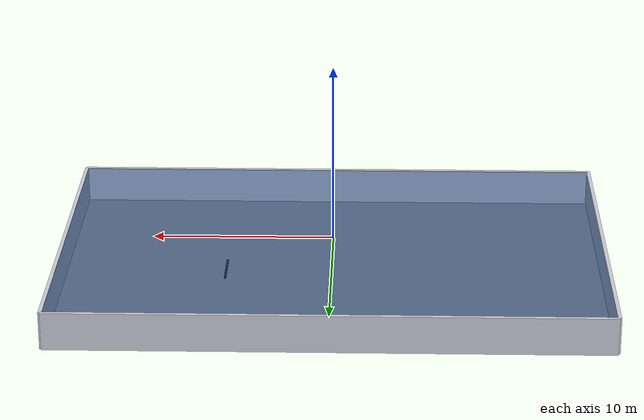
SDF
<?xml version="1.0"?>
<!-- Auto-generated by scripts/generate_worlds.py — do not edit by hand. -->
<sdf version="1.9">
  <world name="marv_task_find_gate_simple">
    <scene>
      <ambient>0.01 0.01 0.01 1.0</ambient>
      <background>0.05 0.08 0.15 1.0</background>
      <shadows>true</shadows>
    </scene>
    <physics name="1ms" type="ignored">
      <max_step_size>0.001</max_step_size>
      <real_time_factor>1.0</real_time_factor>
    </physics>
    <plugin filename="gz-sim-physics-system" name="gz::sim::systems::Physics"/>
    <plugin filename="gz-sim-user-commands-system" name="gz::sim::systems::UserCommands"/>
    <plugin filename="gz-sim-scene-broadcaster-system" name="gz::sim::systems::SceneBroadcaster"/>
    <plugin filename="gz-sim-sensors-system" name="gz::sim::systems::Sensors">
      <render_engine>ogre2</render_engine>
    </plugin>
    <!-- Required for ArduPilotPlugin JSON (imu_sensor -> imuMsgValid). -->
    <plugin filename="gz-sim-imu-system" name="gz::sim::systems::Imu"/>
    <spherical_coordinates>
      <surface_model>EARTH_WGS84</surface_model>
      <world_frame_orientation>ENU</world_frame_orientation>
      <latitude_deg>1.309562</latitude_deg>
      <longitude_deg>103.7745783</longitude_deg>
      <elevation>0.0</elevation>
      <heading_deg>0.0</heading_deg>
    </spherical_coordinates>
    <light type="directional" name="sun1">
      <pose>50 0 150 0 0 0</pose>
      <diffuse>1 1 1 1</diffuse>
      <specular>0.1 0.1 0.1 1</specular>
      <direction>0.3 0.3 -1</direction>
      <cast_shadows>false</cast_shadows>
    </light>
    <light type="directional" name="sun_diffuse">
      <pose>-50 0 -150 0 0 0</pose>
      <diffuse>0.6 0.6 0.6 1</diffuse>
      <direction>-0.3 -0.3 -1</direction>
      <cast_shadows>false</cast_shadows>
    </light>
    <!-- find_gate fallback. -->
    <include>
      <name>pool</name>
      <uri>model://marv_pool</uri>
      <pose>0 0 0 0 0 0</pose>
    </include>
    <include>
      <name>gate</name>
      <uri>model://marv_gate</uri>
      <pose>6 0 -1 0 0 0</pose>
    </include>

    <plugin filename="gz-sim-buoyancy-system" name="gz::sim::systems::Buoyancy">
      <graded_buoyancy>
        <default_density>1000</default_density>
        <density_change>
          <above_depth>0</above_depth>
          <density>1</density>
        </density_change>
      </graded_buoyancy>
    </plugin>
  </world>
</sdf>

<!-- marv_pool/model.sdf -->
<sdf version="1.9">
  <model name="marv_pool">
    <static>true</static>
    <link name="link">
      <visual name="floor">
        <pose>0 0 -2.05 0 0 0</pose>
        <geometry>
          <box>
            <size>30 20 0.1</size>
          </box>
        </geometry>
        <material>
          <ambient>0.35 0.35 0.38 1</ambient>
          <diffuse>0.45 0.45 0.48 1</diffuse>
        </material>
      </visual>
      <collision name="floor_collision">
        <pose>0 0 -2.05 0 0 0</pose>
        <geometry>
          <box>
            <size>30 20 0.1</size>
          </box>
        </geometry>
      </collision>

      <visual name="water_surface">
        <pose>0 0 0 0 0 0</pose>
        <geometry>
          <box>
            <size>30 20 0.02</size>
          </box>
        </geometry>
        <material>
          <ambient>0.05 0.25 0.55 0.35</ambient>
          <diffuse>0.1 0.35 0.65 0.35</diffuse>
        </material>
      </visual>

      <!-- Pool walls -->
      <visual name="wall_n">
        <pose>0 10  -1 0 0 0</pose>
        <geometry><box><size>30 0.2 2.1</size></box></geometry>
        <material><ambient>0.7 0.7 0.75 1</ambient><diffuse>0.8 0.8 0.85 1</diffuse></material>
      </visual>
      <collision name="wall_n"><pose>0 10 -1 0 0 0</pose><geometry><box><size>30 0.2 2.1</size></box></geometry></collision>
      <visual name="wall_s">
        <pose>0 -10 -1 0 0 0</pose>
        <geometry><box><size>30 0.2 2.1</size></box></geometry>
        <material><ambient>0.7 0.7 0.75 1</ambient><diffuse>0.8 0.8 0.85 1</diffuse></material>
      </visual>
      <collision name="wall_s"><pose>0 -10 -1 0 0 0</pose><geometry><box><size>30 0.2 2.1</size></box></geometry></collision>
      <visual name="wall_e">
        <pose>15 0 -1 0 0 0</pose>
        <geometry><box><size>0.2 20 2.1</size></box></geometry>
        <material><ambient>0.7 0.7 0.75 1</ambient><diffuse>0.8 0.8 0.85 1</diffuse></material>
      </visual>
      <collision name="wall_e"><pose>15 0 -1 0 0 0</pose><geometry><box><size>0.2 20 2.1</size></box></geometry></collision>
      <visual name="wall_w">
        <pose>-15 0 -1 0 0 0</pose>
        <geometry><box><size>0.2 20 2.1</size></box></geometry>
        <material><ambient>0.7 0.7 0.75 1</ambient><diffuse>0.8 0.8 0.85 1</diffuse></material>
      </visual>
      <collision name="wall_w"><pose>-15 0 -1 0 0 0</pose><geometry><box><size>0.2 20 2.1</size></box></geometry></collision>
    </link>
  </model>
</sdf>

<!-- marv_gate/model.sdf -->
<!-- Gate opening 2 m wide; frame at 1 m depth (center z=-1 in ENU, surface z=0). -->
<sdf version="1.9">
  <model name="marv_gate">
    <static>true</static>
    <link name="link">
      <pose>0 0 -1 0 0 0</pose>
      <!-- Left post -->
      <visual name="post_l">
        <pose>0 -1.15 -0.5 0 0 0</pose>
        <geometry><box><size>0.12 0.12 1.0</size></box></geometry>
        <material><ambient>0.02 0.02 0.02 1</ambient><diffuse>0.05 0.05 0.05 1</diffuse></material>
      </visual>
      <collision name="post_l"><pose>0 -1.15 -0.5 0 0 0</pose><geometry><box><size>0.12 0.12 1.0</size></box></geometry></collision>
      <!-- Right post -->
      <visual name="post_r">
        <pose>0 1.15 -0.5 0 0 0</pose>
        <geometry><box><size>0.12 0.12 1.0</size></box></geometry>
        <material><ambient>0.02 0.02 0.02 1</ambient><diffuse>0.05 0.05 0.05 1</diffuse></material>
      </visual>
      <collision name="post_r"><pose>0 1.15 -0.5 0 0 0</pose><geometry><box><size>0.12 0.12 1.0</size></box></geometry></collision>
      <!-- Top bar -->
      <visual name="top_bar">
        <pose>0 0 0.0 0 0 0</pose>
        <geometry><box><size>0.12 2.42 0.12</size></box></geometry>
        <material><ambient>0.02 0.02 0.02 1</ambient><diffuse>0.05 0.05 0.05 1</diffuse></material>
      </visual>
      <collision name="top_bar"><pose>0 0 0.0 0 0 0</pose><geometry><box><size>0.12 2.42 0.12</size></box></geometry></collision>
      <!-- All-black panel for OpenCV black_gate detection -->
      <visual name="panel">
        <pose>0 0 -0.35 0 0 0</pose>
        <geometry><box><size>0.04 1.8 0.7</size></box></geometry>
        <material><ambient>0 0 0 1</ambient><diffuse>0 0 0 1</diffuse></material>
      </visual>
    </link>
  </model>
</sdf>
